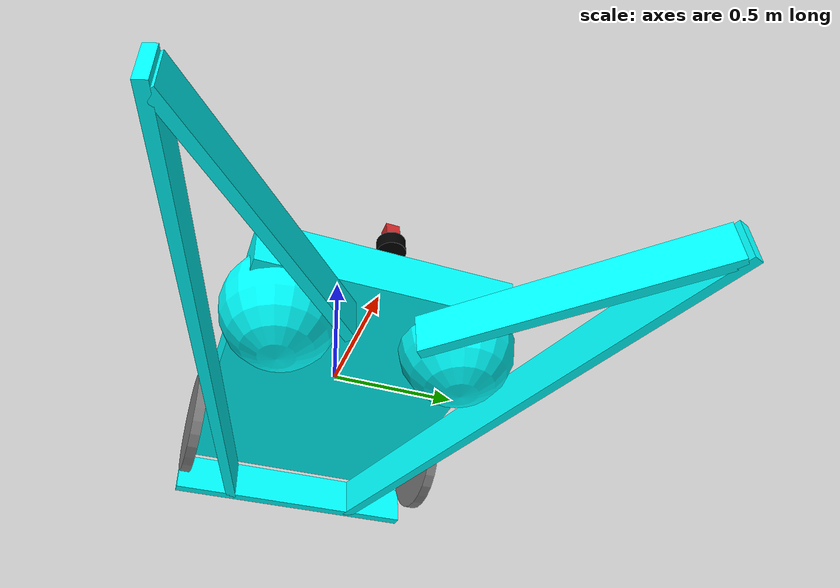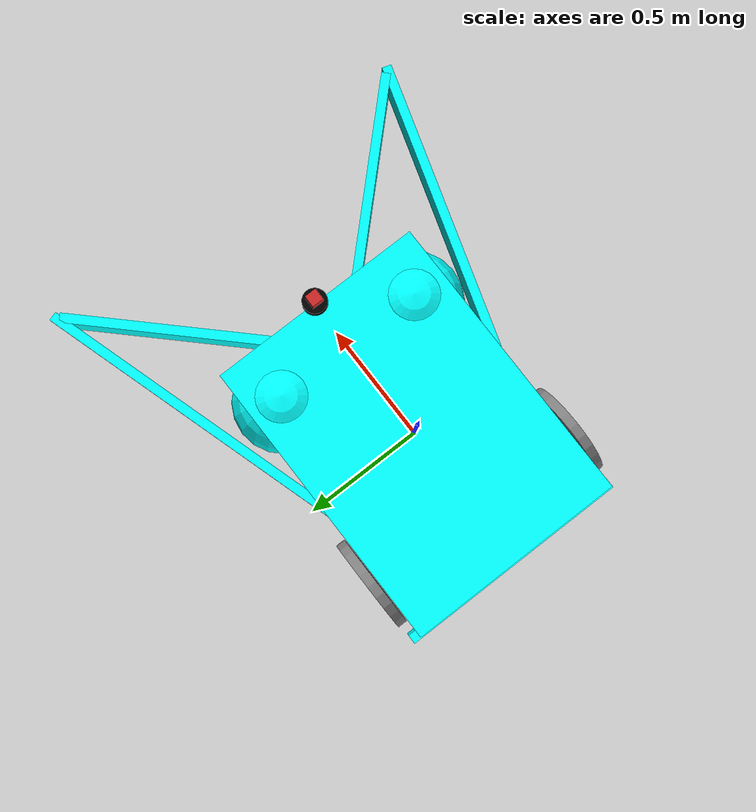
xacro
<?xml version="1.0"?>

<robot name="robochon" xmlns:xacro="http://ros.org/wiki/xacro">
  <!-- Define robot constants -->
  <xacro:property name="base_width" value="${3*0.31}" />
  <xacro:property name="base_length" value="${3*0.42}" />
  <xacro:property name="base_height" value="0.18" />

  <xacro:property name="wheel_radius" value="0.20" />
  <xacro:property name="wheel_width" value="0.04" />
  <xacro:property name="wheel_ygap" value="0.025" />
  <xacro:property name="wheel_zoff" value="0.1" />
  <xacro:property name="wheel_xoff" value="0.36" />
  <xacro:property name="caster_radius" value="${(wheel_radius+wheel_zoff-(base_height/2))}" />
  <xacro:property name="caster_xoff" value="${base_length/3}" />
  <xacro:property name="camera" value="0.05" /> <!-- Size of square 'camera' box -->
  <xacro:property name="axel_offset" value="0.1" />

  <xacro:property name="gripper_width" value="0.04" />
  <xacro:property name="gripper_length" value="2." />
  <xacro:property name="gripper_height" value="${(wheel_radius+wheel_zoff)/2}" />

  <!-- Define intertial property macros  -->
  <xacro:macro name="box_inertia" params="m w h d">
    <inertial>
      <origin xyz="0 0 0" rpy="${pi/2} 0 ${pi/2}" />
      <mass value="${m}" />
      <inertia ixx="${(m/12) * (h*h + d*d)}" ixy="0.0" ixz="0.0" iyy="${(m/12) * (w*w + d*d)}" iyz="0.0" izz="${(m/12) * (w*w + h*h)}" />
    </inertial>
  </xacro:macro>
  <xacro:macro name="gripper_inertia" params="m w h d">
    <inertial>
      <origin xyz="0 0 0" rpy="${pi/2} 0 ${pi/2}" />
      <mass value="${m}" />
      <inertia ixx="${(m/12) * (h*h + d*d)}" ixy="0.0" ixz="0.0" iyy="${(m/12) * (w*w + d*d)}" iyz="0.0" izz="${(m/12) * (w*w + h*h)}" />
    </inertial>
  </xacro:macro>

  <xacro:macro name="cylinder_inertia" params="m r h">
    <inertial>
      <origin xyz="0 0 0" rpy="${pi/2} 0 0" />
      <mass value="${m}" />
      <inertia ixx="${(m/12) * (3*r*r + h*h)}" ixy="0" ixz="0" iyy="${(m/12) * (3*r*r + h*h)}" iyz="0" izz="${(m/2) * (r*r)}" />
    </inertial>
  </xacro:macro>

  <xacro:macro name="sphere_inertia" params="m r">
    <inertial>
      <mass value="${m}" />
      <inertia ixx="${(2/5) * m * (r*r)}" ixy="0.0" ixz="0.0" iyy="${(2/5) * m * (r*r)}" iyz="0.0" izz="${(2/5) * m * (r*r)}" />
    </inertial>
  </xacro:macro>

  <!-- Robot Base -->
  <link name="base_link">
    <visual>
      <origin xyz="0 0 0" rpy="0 0 0" />
      <geometry>
        <box size="${base_length} ${base_width} ${base_height}" />
      </geometry>
      <material name="Cyan">
        <color rgba="0 1.0 1.0 1.0" />
      </material>
    </visual>
    <collision>
      <geometry>
        <box size="${base_length} ${base_width} ${base_height}" />
      </geometry>
    </collision>

    <xacro:box_inertia m="15" w="${base_width}" d="${base_length}" h="${base_height}" />
  </link>
  <gazebo reference="base_link">
    <material>Gazebo/Grey</material>
  </gazebo>

  <!-- Robot Footprint -->
  <link name="base_footprint" />

  <joint name="base_joint" type="fixed">
    <parent link="base_link" />
    <child link="base_footprint" />
    <origin xyz="0.0 0.0 ${-(wheel_radius+wheel_zoff)}" rpy="0 0 0" />
  </joint>

  <!-- Wheels -->
  <xacro:macro name="wheel" params="prefix x_reflect y_reflect">

    <link name="${prefix}_link">
      <visual>
        <origin xyz="0 0 0" rpy="${pi/2} 0 0" />
        <geometry>
          <cylinder radius="${wheel_radius}" length="${wheel_width}" />
        </geometry>
        <material name="Gray">
          <color rgba="0.5 0.5 0.5 1.0" />
        </material>
      </visual>

      <collision>
        <origin xyz="0 0 0" rpy="${pi/2} 0 0" />
        <geometry>
          <cylinder radius="${wheel_radius}" length="${wheel_width}" />
        </geometry>
        <surface>
          <friction>
            <ode>
              <mu1>1.2</mu1>
              <mu2>1.2</mu2>
            </ode>
          </friction>
          <contact>
            <ode>
              <kp>500000.0</kp>
              <kd>10.0</kd>
              <max_vel>0.1</max_vel>
              <min_depth>0.001</min_depth>
            </ode>
          </contact>
        </surface>
      </collision>
      <xacro:cylinder_inertia m="0.5" r="${wheel_radius}" h="${wheel_width}" />

    </link>
    <gazebo reference="${prefix}_link">
      <material>Gazebo/Grey</material>
    </gazebo>
    <joint name="${prefix}_joint" type="continuous">
      <parent link="base_link" />
      <child link="${prefix}_link" />
      <origin xyz="${x_reflect*wheel_xoff} ${y_reflect*(base_width/2+wheel_ygap)} ${-wheel_zoff}" rpy="0 0 0" />
      <axis xyz="0 1 0" />
    </joint>
  </xacro:macro>

  <xacro:wheel prefix="drivewhl_l" x_reflect="-1" y_reflect="1" />
  <xacro:wheel prefix="drivewhl_r" x_reflect="-1" y_reflect="-1" />

  <!-- Front caster -->
  <xacro:macro name="front_caster" params="prefix y_reflect link_daddy">
    <link name="front_caster_${prefix}">
      <visual>
        <geometry>
          <sphere radius="${caster_radius}" />
        </geometry>
        <material name="Cyan">
          <color rgba="0 1.0 1.0 1.0" />
        </material>
      </visual>

      <collision>
        <origin xyz="0 0 0" rpy="0 0 0" />
        <geometry>
          <sphere radius="${caster_radius}" />
        </geometry>
      </collision>
      <xacro:sphere_inertia m="0.5" r="${caster_radius}" />
    </link>
    <gazebo reference="front_caster_${prefix}">
      <mu1>0.01</mu1>
      <mu2>0.01</mu2>
    </gazebo>

    <joint name="caster_joint_${prefix}" type="fixed">
      <parent link="${link_daddy}" />
      <child link="front_caster_${prefix}" />
      <origin xyz="${caster_xoff} ${y_reflect*0.7*base_width/2} ${-(base_height/2)}" rpy="0 0 0" />
    </joint>
  </xacro:macro>

  <xacro:front_caster prefix="front_left" link_daddy="base_link" y_reflect="1" />
  <xacro:front_caster prefix="front_right" link_daddy="base_link" y_reflect="-1" />
  <gazebo reference="front_caster_front_left">
    <material>Gazebo/Red</material>
  </gazebo>

  <gazebo reference="front_caster_front_right">
    <material>Gazebo/Green</material>
  </gazebo>

  <!-- Gripper -->
  <xacro:macro name="gripper" params="prefix x_reflect y_reflect z_reflect z_rotation lenght_x link_daddy">
    <link name="${prefix}_link">
      <visual>
        <origin xyz="0 0 0" rpy="0 0 0" />
        <geometry>
          <box size="${gripper_length*lenght_x} ${gripper_width} ${gripper_height}" />
        </geometry>
        <material name="Cyan">
          <color rgba="0 1.0 1.0 1.0" />
        </material>
      </visual>
      <collision>
        <geometry>
          <box size="${gripper_length*lenght_x} ${gripper_width} ${gripper_height}" />
        </geometry>
      </collision>
      <xacro:gripper_inertia m="2" w="${gripper_width*lenght_x}" d="${gripper_length}" h="${gripper_height}" />
    </link>
    <gazebo reference="${prefix}_link">
      <mu1>1.4</mu1>
      <mu2>1.4</mu2>
      <material>Gazebo/Grey</material>
    </gazebo>

    <joint name="${prefix}_joint" type="fixed">
      <parent link="${link_daddy}" />
      <child link="${prefix}_link" />
      <origin xyz="${x_reflect*base_length/4} ${y_reflect*(base_width*0.6)} ${(-base_height/2 -wheel_zoff)*z_reflect}" rpy="0 0 ${z_rotation}" />
    </joint>
  </xacro:macro>

  <xacro:gripper prefix="gripper_l" x_reflect="1" y_reflect="1" z_reflect="1" z_rotation="0.3" lenght_x="1" link_daddy="base_link" />
  <xacro:gripper prefix="gripper_r" x_reflect="1" y_reflect="-1" z_reflect="1" z_rotation="-0.3" lenght_x="1" link_daddy="base_link" />
  <xacro:gripper prefix="gripper_hor" x_reflect="-2" y_reflect="0" z_reflect="1" z_rotation="1.57" lenght_x="0.5" link_daddy="base_link" />

  <xacro:gripper prefix="gripper_l_front" x_reflect="1.7" y_reflect="-0.45" z_reflect="0" z_rotation="0.5" lenght_x="0.5" link_daddy="gripper_l_link" />
  <xacro:gripper prefix="gripper_r_front" x_reflect="1.7" y_reflect="0.45" z_reflect="0" z_rotation="-0.5" lenght_x="0.5" link_daddy="gripper_r_link" />

  <!-- LIDAR -->
  <joint name="lidar_joint" type="fixed">
    <parent link="base_link" />
    <child link="lidar_link" />
    <origin xyz="${base_length/2} 0 0.115" rpy="0 0 0" />
  </joint>

  <link name="lidar_link">
    <visual>
      <origin xyz="0 0 0" rpy="0 0 0" />
      <geometry>
        <cylinder radius="0.0508" length="0.05" />
      </geometry>
      <material name="Black">
        <color rgba="${0/255} ${0/255} ${0/255} 1.0" />
      </material>
    </visual>

    <collision>
      <origin xyz="0 0 0" rpy="0 0 0" />
      <geometry>
        <cylinder radius="0.0508" length="0.05" />
      </geometry>
    </collision>

    <inertial>
      <mass value="0.114" />
      <origin xyz="0 0 0" rpy="0 0 0" />
      <inertia ixx="0.001" ixy="0" ixz="0" iyy="0.001" iyz="0" izz="0.001" />
    </inertial>
  </link>

  <joint name="camera_joint" type="fixed">
    <axis xyz="0 1 0" />
    <origin xyz="${base_length/2} 0 ${base_height}" rpy="0 0 0" />
    <parent link="base_link" />
    <child link="camera_link" />
  </joint>

  <!-- Camera -->
  <link name="camera_link">
    <collision>
      <origin xyz="0 0 0" rpy="0 0 0" />
      <geometry>
        <box size="${camera} ${camera} ${camera}" />
      </geometry>
    </collision>

    <visual>
      <origin xyz="0 0 0" rpy="0 0 0" />
      <geometry>
        <box size="${camera} ${camera} ${camera}" />
      </geometry>
      <material name="red" />
    </visual>

    <inertial>
      <mass value="1e-5" />
      <origin xyz="0 0 0" rpy="0 0 0" />
      <inertia ixx="1e-6" ixy="0" ixz="0" iyy="1e-6" iyz="0" izz="1e-6" />
    </inertial>
  </link>

  <!-- camera -->
  <gazebo reference="camera_link">
    <sensor type="camera" name="camera1">
      <update_rate>30.0</update_rate>
      <camera name="head">
        <horizontal_fov>1.3962634</horizontal_fov>
        <image>
          <width>1200</width>
          <height>800</height>
          <format>R8G8B8</format>
        </image>
        <clip>
          <near>0.02</near>
          <far>300</far>
        </clip>
        <noise>
          <type>gaussian</type>
          <mean>0.0</mean>
          <stddev>0.007</stddev>
        </noise>
      </camera>
      <plugin name="camera_controller" filename="libgazebo_ros_camera.so">
        <always_on>true</always_on>
        <update_rate>5.0</update_rate>
        <camera_name>camera1</camera_name>
        <ros>
          <namespace>/camera</namespace>
          <remapping>~/out:=image_raw</remapping>
          <remapping>~/out:=camera_info</remapping>
        </ros>
        <output_type>sensor_msgs/CameraInfo</output_type>
        <output_type>sensor_msgs/ImageRaw</output_type>
        <frame_name>camera_link</frame_name>
        <hack_baseline>0.07</hack_baseline>
        <distortion_k1>0.0</distortion_k1>
        <distortion_k2>0.0</distortion_k2>
        <distortion_k3>0.0</distortion_k3>
        <distortion_p1>0.0</distortion_p1>
        <distortion_p2>0.0</distortion_p2>
      </plugin>
      <visualize>false</visualize>
    </sensor>
  </gazebo>

  <gazebo>
    <!-- Differential drive -->
    <plugin name='diff_drive' filename='libgazebo_ros_diff_drive.so'>

      <!-- wheels -->
      <left_joint>drivewhl_l_joint</left_joint>
      <right_joint>drivewhl_r_joint</right_joint>

      <!-- kinematics -->
      <wheel_separation>0.35</wheel_separation>
      <wheel_diameter>0.2</wheel_diameter>

      <!-- limits -->
      <max_wheel_torque>20</max_wheel_torque>
      <max_wheel_acceleration>1.0</max_wheel_acceleration>

      <!-- output -->
      <publish_odom>true</publish_odom>
      <publish_odom_tf>true</publish_odom_tf>
      <publish_wheel_tf>true</publish_wheel_tf>

      <odometry_frame>odom_demo</odometry_frame>
      <robot_base_frame>base_link</robot_base_frame>

    </plugin>
  </gazebo>

  <gazebo reference="lidar_link">
    <sensor name="sensor_ray" type="ray">
      <ray>
        <scan>
          <horizontal>
            <samples>360</samples>
            <resolution>1.0</resolution>
            <min_angle>-3.14</min_angle>
            <max_angle>3.14</max_angle>
          </horizontal>
        </scan>
        <range>
          <min>0.5</min>
          <max>50.0</max>
        </range>
      </ray>
      <always_on>true</always_on>
      <update_rate>1.0</update_rate>
      <plugin name="pc2" filename="libgazebo_ros_ray_sensor.so">
        <ros>
          <namespace>/ray</namespace>
          <remapping>~/out:=pointcloud2</remapping>
        </ros>
        <output_type>sensor_msgs/PointCloud2</output_type>
        <frame_name>lidar_link</frame_name>
      </plugin>
      <plugin name="pc" filename="libgazebo_ros_ray_sensor.so">
        <ros>
          <namespace>/ray</namespace>
          <remapping>~/out:=pointcloud</remapping>
        </ros>
        <output_type>sensor_msgs/PointCloud</output_type>
        <frame_name>lidar_link</frame_name>
      </plugin>
      <plugin name="laserscan" filename="libgazebo_ros_ray_sensor.so">
        <ros>
          <namespace>/ray</namespace>
          <remapping>~/out:=laserscan</remapping>
        </ros>
        <output_type>sensor_msgs/LaserScan</output_type>
        <frame_name>lidar_link</frame_name>
      </plugin>
      <plugin name="range" filename="libgazebo_ros_ray_sensor.so">
        <ros>
          <namespace>/ray</namespace>
          <remapping>~/out:=range</remapping>
        </ros>
        <output_type>sensor_msgs/Range</output_type>
        <frame_name>lidar_link</frame_name>
      </plugin>
      <visualize>false</visualize>
    </sensor>
  </gazebo>

</robot>
